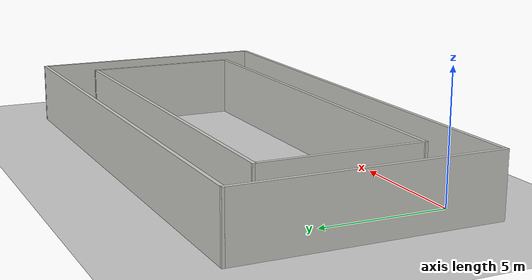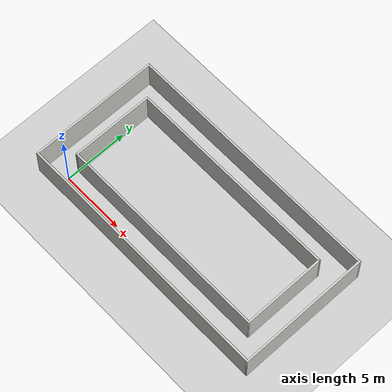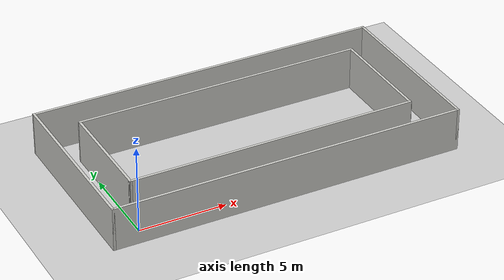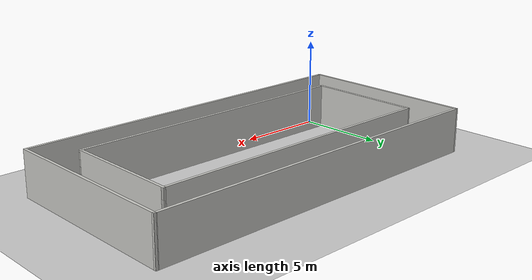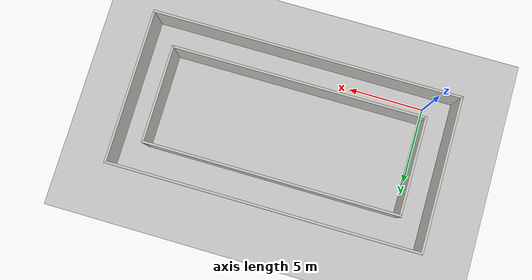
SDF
<sdf version="1.6">
 <world name="default">
  <include><uri>model://ground_plane</uri></include>
  <include><uri>model://sun</uri></include>
  <magnetic_field>6e-06 2.3e-05 -4.2e-05</magnetic_field>
  <atmosphere type="adiabatic"/>
  <plugin name="ros_interface_plugin" filename="librotors_gazebo_ros_interface_plugin.so"/>
  <spherical_coordinates>
   <surface_model>EARTH_WGS84</surface_model>
   <latitude_deg>47.3667</latitude_deg>
   <longitude_deg>8.5500</longitude_deg>
   <elevation>500.0</elevation>
   <heading_deg>0</heading_deg>
  </spherical_coordinates>
  <physics type="ode">
   <ode>
    <solver><type>quick</type><iters>1000</iters><sor>1.3</sor></solver>
    <constraints>
     <cfm>0</cfm>
     <erp>0.2</erp>
     <contact_max_correcting_vel>100</contact_max_correcting_vel>
     <contact_surface_layer>0.001</contact_surface_layer>
    </constraints>
   </ode>
   <max_step_size>0.01</max_step_size>
   <real_time_factor>1</real_time_factor>
   <real_time_update_rate>100</real_time_update_rate>
   <gravity>0 0 -9.8</gravity>
  </physics>
  <scene><ambient>0.4 0.4 0.4 1</ambient><background>0.7 0.7 0.7 1</background><shadows>1</shadows></scene>
  <model name="loop1">
   <pose>8.3515 4.114 0 0 -0 0</pose>
   <link name="Wall_15">
    <collision name="Wall_15_Collision">
     <geometry><box><size>20.5 0.15 2.5</size></box></geometry>
     <pose>0 0 1.25 0 -0 0</pose>
    </collision>
    <visual name="Wall_15_Visual">
     <pose>0 0 1.25 0 -0 0</pose>
     <geometry><box><size>20.5 0.15 2.5</size></box></geometry>
     <material>
      <script><uri>file://media/materials/scripts/gazebo.material</uri><name>Gazebo/CeilingTiled</name></script>
      <ambient>1 1 1 1</ambient>
     </material>
    </visual>
    <pose>0 -5.05002 0 0 -0 0</pose>
   </link>
   <link name="Wall_16">
    <collision name="Wall_16_Collision">
     <geometry><box><size>10.25 0.15 2.5</size></box></geometry>
     <pose>0 0 1.25 0 -0 0</pose>
    </collision>
    <visual name="Wall_16_Visual">
     <pose>0 0 1.25 0 -0 0</pose>
     <geometry><box><size>10.25 0.15 2.5</size></box></geometry>
     <material>
      <script><uri>file://media/materials/scripts/gazebo.material</uri><name>Gazebo/CeilingTiled</name></script>
      <ambient>1 1 1 1</ambient>
     </material>
    </visual>
    <pose>10.175 -1.9e-05 0 0 -0 1.5708</pose>
   </link>
   <link name="Wall_17">
    <collision name="Wall_17_Collision">
     <geometry><box><size>20.5 0.15 2.5</size></box></geometry>
     <pose>0 0 1.25 0 -0 0</pose>
    </collision>
    <visual name="Wall_17_Visual">
     <pose>0 0 1.25 0 -0 0</pose>
     <geometry><box><size>20.5 0.15 2.5</size></box></geometry>
     <material>
      <script><uri>file://media/materials/scripts/gazebo.material</uri><name>Gazebo/CeilingTiled</name></script>
      <ambient>1 1 1 1</ambient>
     </material>
    </visual>
    <pose>0 5.04468 0 0 0 -3.14107</pose>
   </link>
   <link name="Wall_26">
    <collision name="Wall_26_Collision">
     <geometry><box><size>6.5 0.15 2.5</size></box></geometry>
     <pose>0 0 1.25 0 -0 0</pose>
    </collision>
    <visual name="Wall_26_Visual">
     <pose>0 0 1.25 0 -0 0</pose>
     <geometry><box><size>6.5 0.15 2.5</size></box></geometry>
     <material>
      <script><uri>file://media/materials/scripts/gazebo.material</uri><name>Gazebo/CeilingTiled</name></script>
      <ambient>1 1 1 1</ambient>
     </material>
    </visual>
    <pose>-8.325 0.014383 0 0 0 -1.5708</pose>
   </link>
   <link name="Wall_3">
    <collision name="Wall_3_Collision">
     <geometry><box><size>10.2394 0.15 2.5</size></box></geometry>
     <pose>0 0 1.25 0 -0 0</pose>
    </collision>
    <visual name="Wall_3_Visual">
     <pose>0 0 1.25 0 -0 0</pose>
     <geometry><box><size>10.2394 0.15 2.5</size></box></geometry>
     <material>
      <script><uri>file://media/materials/scripts/gazebo.material</uri><name>Gazebo/CeilingTiled</name></script>
      <ambient>1 1 1 1</ambient>
     </material>
    </visual>
    <pose>-10.175 -0.005318 0 0 0 -1.5708</pose>
   </link>
   <link name="Wall_30">
    <collision name="Wall_30_Collision">
     <geometry><box><size>6.5 0.15 2.5</size></box></geometry>
     <pose>0 0 1.25 0 -0 0</pose>
    </collision>
    <visual name="Wall_30_Visual">
     <pose>0 0 1.25 0 -0 0</pose>
     <geometry><box><size>6.5 0.15 2.5</size></box></geometry>
     <material>
      <script><uri>file://media/materials/scripts/gazebo.material</uri><name>Gazebo/CeilingTiled</name></script>
      <ambient>1 1 1 1</ambient>
     </material>
    </visual>
    <pose>8.325 0.024981 0 0 0 -1.5708</pose>
   </link>
   <link name="Wall_31">
    <collision name="Wall_31_Collision">
     <geometry><box><size>16.8 0.15 2.5</size></box></geometry>
     <pose>0 0 1.25 0 -0 0</pose>
    </collision>
    <visual name="Wall_31_Visual">
     <pose>0 0 1.25 0 -0 0</pose>
     <geometry><box><size>16.8 0.15 2.5</size></box></geometry>
     <material>
      <script><uri>file://media/materials/scripts/gazebo.material</uri><name>Gazebo/CeilingTiled</name></script>
      <ambient>1 1 1 1</ambient>
     </material>
    </visual>
    <pose>0 -3.15532 0 0 0 -3.14096</pose>
   </link>
   <link name="Wall_33">
    <collision name="Wall_33_Collision">
     <geometry><box><size>16.8 0.15 2.5</size></box></geometry>
     <pose>0 0 1.25 0 -0 0</pose>
    </collision>
    <visual name="Wall_33_Visual">
     <pose>0 0 1.25 0 -0 0</pose>
     <geometry><box><size>16.8 0.15 2.5</size></box></geometry>
     <material>
      <script><uri>file://media/materials/scripts/gazebo.material</uri><name>Gazebo/CeilingTiled</name></script>
      <ambient>1 1 1 1</ambient>
     </material>
    </visual>
    <pose>0 3.19468 0 0 -0 0.000637</pose>
   </link>
   <static>1</static>
  </model>
 </world>
</sdf>
